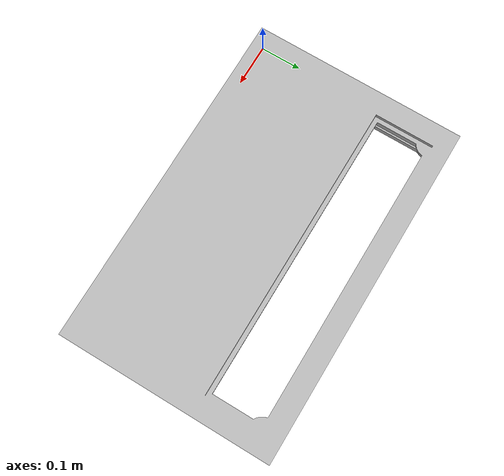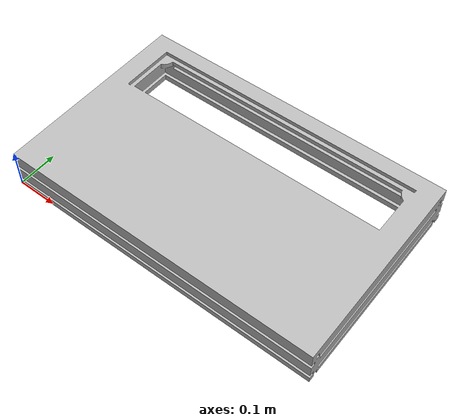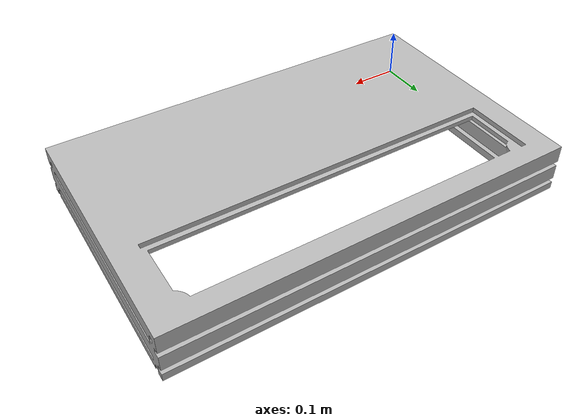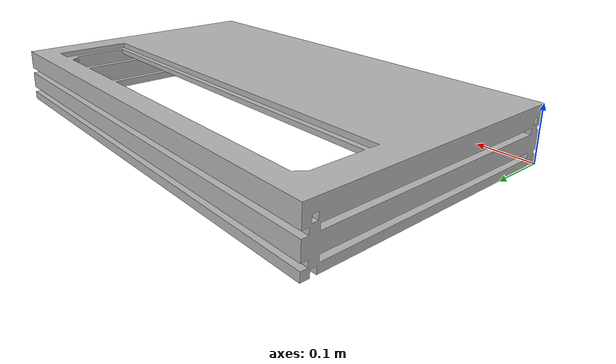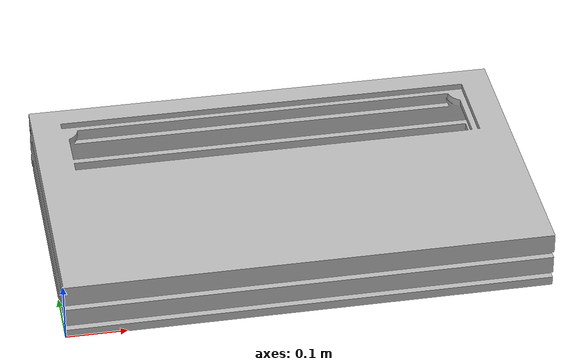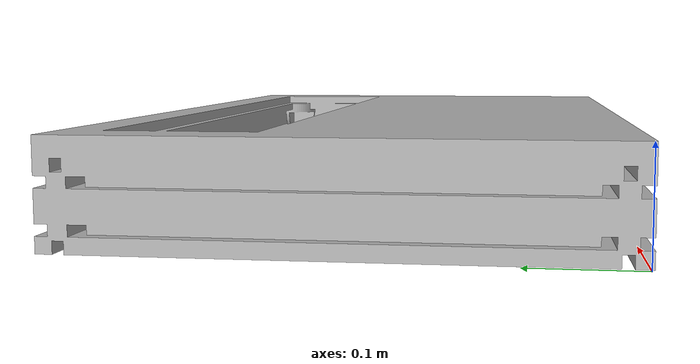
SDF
<?xml version="1.0" ?>
<sdf version="1.3">
  <model name="ppt_platform_800x500x99_90degree">
    <static>true</static>
    <link name="link">
      <pose>0 0 0 0 0 0</pose>
      <collision name="collision">
        <geometry>
          <mesh>
            <uri>model://ppt_platform_800x500x99_90degree/meshes/ppt_platform_800x500x99_90degree.dae</uri>
          </mesh>
        </geometry>
      </collision>
      <visual name="visual">
        <geometry>
          <mesh>
            <uri>model://ppt_platform_800x500x99_90degree/meshes/ppt_platform_800x500x99_90degree.dae</uri>
          </mesh>
        </geometry>
      </visual>
    </link>
  </model>
</sdf>
